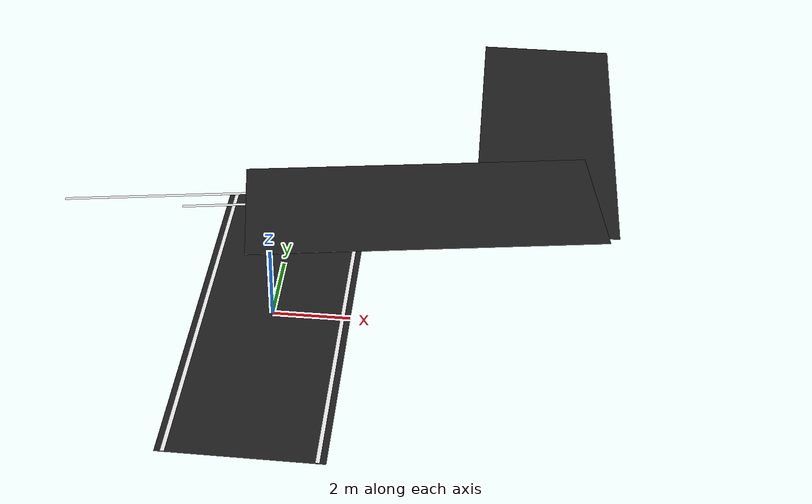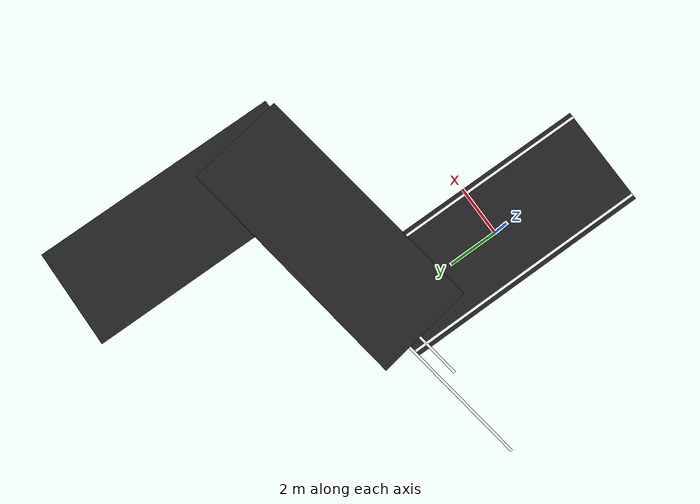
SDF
<?xml version='1.0'?>
<sdf version='1.7'>
  <world name='curved_road_test'>

    <!-- Lumière du soleil -->
    <light name='sun' type='directional'>
      <cast_shadows>1</cast_shadows>
      <pose>0 0 10 0 -0 0</pose>
      <diffuse>0.8 0.8 0.8 1</diffuse>
      <specular>0.2 0.2 0.2 1</specular>
      <direction>-0.5 0.1 -0.9</direction>
    </light>

    <!-- Segments de route -->
    <model name='road_segment_1'>
      <static>1</static>
      <link name='link'>
        <visual name='visual'>
          <geometry>
            <plane>
              <normal>0 0 1</normal>
              <size>4 10</size>
            </plane>
          </geometry>
          <material>
            <script>
              <uri>file://media/materials/scripts/gazebo.material</uri>
              <name>Gazebo/Black</name>
            </script>
          </material>
        </visual>
        <pose>0 0 0 0 0 0</pose>
      </link>
    </model>

    <model name='road_turn_1'>
      <static>1</static>
      <link name='link'>
        <visual name='visual'>
          <geometry>
            <plane>
              <normal>0 0 1</normal>
              <size>4 10</size>
            </plane>
          </geometry>
          <material>
            <script>
              <uri>file://media/materials/scripts/gazebo.material</uri>
              <name>Gazebo/Black</name>
            </script>
          </material>
        </visual>
        <pose>3.5 5 0 0 0 30</pose>
      </link>
    </model>

    <model name='road_segment_2'>
      <static>1</static>
      <link name='link'>
        <visual name='visual'>
          <geometry>
            <plane>
              <normal>0 0 1</normal>
              <size>4 10</size>
            </plane>
          </geometry>
          <material>
            <script>
              <uri>file://media/materials/scripts/gazebo.material</uri>
              <name>Gazebo/Black</name>
            </script>
          </material>
        </visual>
        <pose>7 9 0 0 0 0</pose>
      </link>
    </model>

    <!-- Lignes blanches gauche et droite -->
    <model name='white_line_1_left'>
      <static>1</static>
      <link name='link'>
        <visual name='visual'>
          <geometry>
            <plane>
              <normal>0 0 1</normal>
              <size>0.1 10</size>
            </plane>
          </geometry>
          <material>
            <script>
              <uri>file://media/materials/scripts/gazebo.material</uri>
              <name>Gazebo/White</name>
            </script>
          </material>
        </visual>
        <pose>-1.8 0 0 0 0 0</pose>
      </link>
    </model>

    <model name='white_line_1_right'>
      <static>1</static>
      <link name='link'>
        <visual name='visual'>
          <geometry>
            <plane>
              <normal>0 0 1</normal>
              <size>0.1 10</size>
            </plane>
          </geometry>
          <material>
            <script>
              <uri>file://media/materials/scripts/gazebo.material</uri>
              <name>Gazebo/White</name>
            </script>
          </material>
        </visual>
        <pose>1.8 0 0 0 0 0</pose>
      </link>
    </model>

    <model name='white_line_turn_left'>
      <static>1</static>
      <link name='link'>
        <visual name='visual'>
          <geometry>
            <plane>
              <normal>0 0 1</normal>
              <size>0.1 10</size>
            </plane>
          </geometry>
          <material>
            <script>
              <uri>file://media/materials/scripts/gazebo.material</uri>
              <name>Gazebo/White</name>
            </script>
          </material>
        </visual>
        <pose>1.7 5 0 0 0 30</pose>
      </link>
    </model>

    <model name='white_line_turn_right'>
      <static>1</static>
      <link name='link'>
        <visual name='visual'>
          <geometry>
            <plane>
              <normal>0 0 1</normal>
              <size>0.1 10</size>
            </plane>
          </geometry>
          <material>
            <script>
              <uri>file://media/materials/scripts/gazebo.material</uri>
              <name>Gazebo/White</name>
            </script>
          </material>
        </visual>
        <pose>-1.7 5 0 0 0 30</pose>
      </link>
    </model>

  </world>
</sdf>
